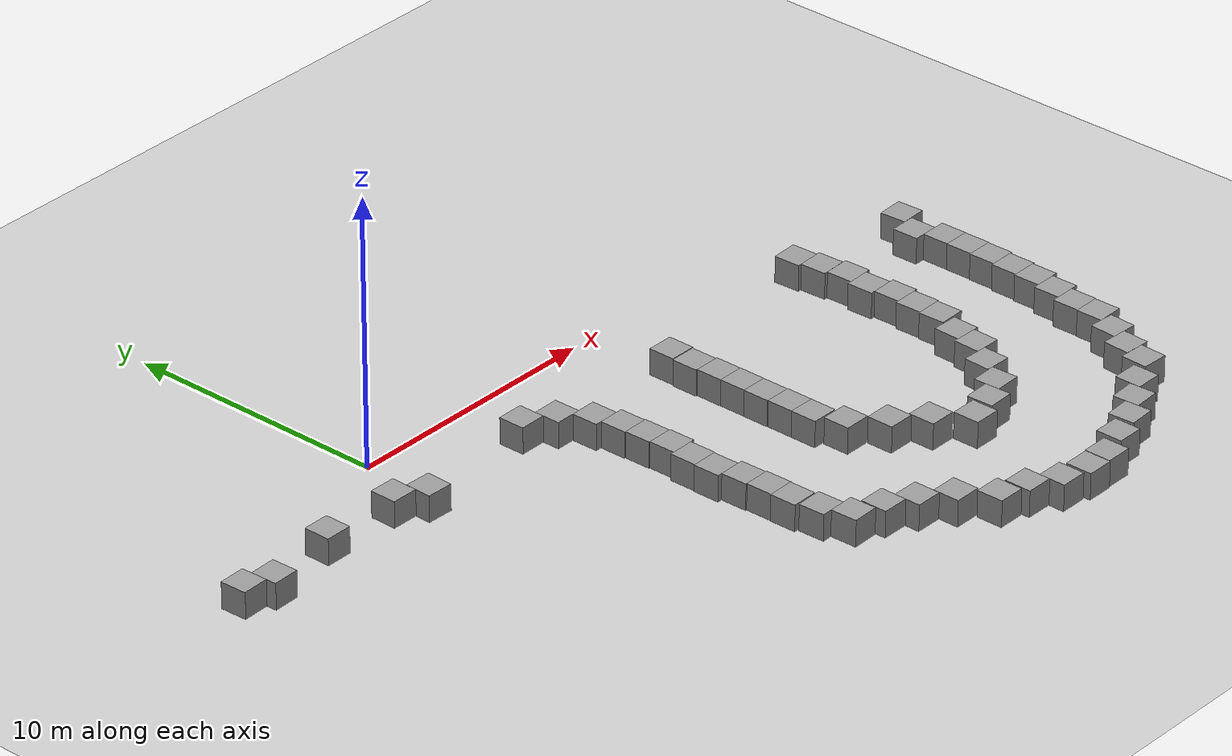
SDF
<sdf version="1.7">
 <world name="default">
  <model name="ground_plane">
   <static>1</static>
   <link name="link">
    <collision name="collision">
     <geometry><plane><normal>0 0 1</normal><size>100 100</size></plane></geometry>
     <surface>
      <contact><collide_bitmask>65535</collide_bitmask></contact>
      <friction><ode><mu>100</mu><mu2>50</mu2></ode></friction>
     </surface>
    </collision>
    <visual name="visual">
     <cast_shadows>0</cast_shadows>
     <geometry><plane><normal>0 0 1</normal><size>100 100</size></plane></geometry>
     <material>
      <script><uri>file://media/materials/scripts/gazebo.material</uri><name>Gazebo/Grey</name></script>
     </material>
    </visual>
   </link>
  </model>
  <model name="unit_box_5">
   <pose>-1.63227 -2.63168 0.499995 0 -1e-05 -0.008028</pose>
   <link name="link">
    <inertial>
     <mass>1</mass>
     <inertia>
      <ixx>0.166667</ixx>
      <ixy>0</ixy>
      <ixz>0</ixz>
      <iyy>0.166667</iyy>
      <iyz>0</iyz>
      <izz>0.166667</izz>
     </inertia>
    </inertial>
    <collision name="collision"><geometry><box><size>1 1 1</size></box></geometry></collision>
    <visual name="visual">
     <geometry><box><size>1 1 1</size></box></geometry>
     <material>
      <script><name>Gazebo/Grey</name><uri>file://media/materials/scripts/gazebo.material</uri></script>
     </material>
    </visual>
   </link>
  </model>
  <model name="unit_box_16">
   <pose>4.39824 -2.70245 0.499995 1e-05 0 0.00622</pose>
   <link name="link">
    <inertial>
     <mass>1</mass>
     <inertia>
      <ixx>0.166667</ixx>
      <ixy>0</ixy>
      <ixz>0</ixz>
      <iyy>0.166667</iyy>
      <iyz>0</iyz>
      <izz>0.166667</izz>
     </inertia>
    </inertial>
    <collision name="collision"><geometry><box><size>1 1 1</size></box></geometry></collision>
    <visual name="visual">
     <geometry><box><size>1 1 1</size></box></geometry>
     <material>
      <script><name>Gazebo/Grey</name><uri>file://media/materials/scripts/gazebo.material</uri></script>
     </material>
    </visual>
   </link>
  </model>
  <model name="unit_box_17">
   <pose>5.40236 -3.34784 0.499995 -0 1e-05 0.006361</pose>
   <link name="link">
    <inertial>
     <mass>1</mass>
     <inertia>
      <ixx>0.166667</ixx>
      <ixy>0</ixy>
      <ixz>0</ixz>
      <iyy>0.166667</iyy>
      <iyz>0</iyz>
      <izz>0.166667</izz>
     </inertia>
    </inertial>
    <collision name="collision"><geometry><box><size>1 1 1</size></box></geometry></collision>
    <visual name="visual">
     <geometry><box><size>1 1 1</size></box></geometry>
     <material>
      <script><name>Gazebo/Grey</name><uri>file://media/materials/scripts/gazebo.material</uri></script>
     </material>
    </visual>
   </link>
  </model>
  <model name="unit_box_18">
   <pose>6.11714 -4.34221 0.499995 0 -1e-05 0.011712</pose>
   <link name="link">
    <inertial>
     <mass>1</mass>
     <inertia>
      <ixx>0.166667</ixx>
      <ixy>0</ixy>
      <ixz>0</ixz>
      <iyy>0.166667</iyy>
      <iyz>0</iyz>
      <izz>0.166667</izz>
     </inertia>
    </inertial>
    <collision name="collision"><geometry><box><size>1 1 1</size></box></geometry></collision>
    <visual name="visual">
     <geometry><box><size>1 1 1</size></box></geometry>
     <material>
      <script><name>Gazebo/Grey</name><uri>file://media/materials/scripts/gazebo.material</uri></script>
     </material>
    </visual>
   </link>
  </model>
  <model name="unit_box_19">
   <pose>6.3639 -5.33969 0.499995 0 1e-05 0.011886</pose>
   <link name="link">
    <inertial>
     <mass>1</mass>
     <inertia>
      <ixx>0.166667</ixx>
      <ixy>0</ixy>
      <ixz>0</ixz>
      <iyy>0.166667</iyy>
      <iyz>0</iyz>
      <izz>0.166667</izz>
     </inertia>
    </inertial>
    <collision name="collision"><geometry><box><size>1 1 1</size></box></geometry></collision>
    <visual name="visual">
     <geometry><box><size>1 1 1</size></box></geometry>
     <material>
      <script><name>Gazebo/Grey</name><uri>file://media/materials/scripts/gazebo.material</uri></script>
     </material>
    </visual>
   </link>
  </model>
  <model name="unit_box_28">
   <pose>10.8726 -3.51527 0.499995 -1e-05 -0 -5e-06</pose>
   <link name="link">
    <inertial>
     <mass>1</mass>
     <inertia>
      <ixx>0.166667</ixx>
      <ixy>0</ixy>
      <ixz>0</ixz>
      <iyy>0.166667</iyy>
      <iyz>0</iyz>
      <izz>0.166667</izz>
     </inertia>
    </inertial>
    <collision name="collision"><geometry><box><size>1 1 1</size></box></geometry></collision>
    <visual name="visual">
     <geometry><box><size>1 1 1</size></box></geometry>
     <material>
      <script><name>Gazebo/Grey</name><uri>file://media/materials/scripts/gazebo.material</uri></script>
     </material>
    </visual>
   </link>
  </model>
  <model name="unit_box_29">
   <pose>10.8241 -4.54943 0.499995 -1e-05 -0 0.000273</pose>
   <link name="link">
    <inertial>
     <mass>1</mass>
     <inertia>
      <ixx>0.166667</ixx>
      <ixy>0</ixy>
      <ixz>0</ixz>
      <iyy>0.166667</iyy>
      <iyz>0</iyz>
      <izz>0.166667</izz>
     </inertia>
    </inertial>
    <collision name="collision"><geometry><box><size>1 1 1</size></box></geometry></collision>
    <visual name="visual">
     <geometry><box><size>1 1 1</size></box></geometry>
     <material>
      <script><name>Gazebo/Grey</name><uri>file://media/materials/scripts/gazebo.material</uri></script>
     </material>
    </visual>
   </link>
  </model>
  <model name="unit_box_30">
   <pose>10.8797 -5.54946 0.499995 -1e-05 0 0.00022</pose>
   <link name="link">
    <inertial>
     <mass>1</mass>
     <inertia>
      <ixx>0.166667</ixx>
      <ixy>0</ixy>
      <ixz>0</ixz>
      <iyy>0.166667</iyy>
      <iyz>0</iyz>
      <izz>0.166667</izz>
     </inertia>
    </inertial>
    <collision name="collision"><geometry><box><size>1 1 1</size></box></geometry></collision>
    <visual name="visual">
     <geometry><box><size>1 1 1</size></box></geometry>
     <material>
      <script><name>Gazebo/Grey</name><uri>file://media/materials/scripts/gazebo.material</uri></script>
     </material>
    </visual>
   </link>
  </model>
  <model name="unit_box_31">
   <pose>6.41406 -6.33969 0.499995 0 1e-05 0.012971</pose>
   <link name="link">
    <inertial>
     <mass>1</mass>
     <inertia>
      <ixx>0.166667</ixx>
      <ixy>0</ixy>
      <ixz>0</ixz>
      <iyy>0.166667</iyy>
      <iyz>0</iyz>
      <izz>0.166667</izz>
     </inertia>
    </inertial>
    <collision name="collision"><geometry><box><size>1 1 1</size></box></geometry></collision>
    <visual name="visual">
     <geometry><box><size>1 1 1</size></box></geometry>
     <material>
      <script><name>Gazebo/Grey</name><uri>file://media/materials/scripts/gazebo.material</uri></script>
     </material>
    </visual>
   </link>
  </model>
  <model name="unit_box_32">
   <pose>10.8891 -6.54951 0.499995 0 1e-05 0.00017</pose>
   <link name="link">
    <inertial>
     <mass>1</mass>
     <inertia>
      <ixx>0.166667</ixx>
      <ixy>0</ixy>
      <ixz>0</ixz>
      <iyy>0.166667</iyy>
      <iyz>0</iyz>
      <izz>0.166667</izz>
     </inertia>
    </inertial>
    <collision name="collision"><geometry><box><size>1 1 1</size></box></geometry></collision>
    <visual name="visual">
     <geometry><box><size>1 1 1</size></box></geometry>
     <material>
      <script><name>Gazebo/Grey</name><uri>file://media/materials/scripts/gazebo.material</uri></script>
     </material>
    </visual>
   </link>
  </model>
  <model name="unit_box_33">
   <pose>6.46012 -7.33918 0.5 0 -0 0.012974</pose>
   <link name="link">
    <inertial>
     <mass>1</mass>
     <inertia>
      <ixx>0.166667</ixx>
      <ixy>0</ixy>
      <ixz>0</ixz>
      <iyy>0.166667</iyy>
      <iyz>0</iyz>
      <izz>0.166667</izz>
     </inertia>
    </inertial>
    <collision name="collision"><geometry><box><size>1 1 1</size></box></geometry></collision>
    <visual name="visual">
     <geometry><box><size>1 1 1</size></box></geometry>
     <material>
      <script><name>Gazebo/Grey</name><uri>file://media/materials/scripts/gazebo.material</uri></script>
     </material>
    </visual>
   </link>
  </model>
  <model name="unit_box_32_clone">
   <pose>6.33219 -8.3411 0.5 0 -0 0.013303</pose>
   <link name="link">
    <inertial>
     <mass>1</mass>
     <inertia>
      <ixx>0.166667</ixx>
      <ixy>0</ixy>
      <ixz>0</ixz>
      <iyy>0.166667</iyy>
      <iyz>0</iyz>
      <izz>0.166667</izz>
     </inertia>
    </inertial>
    <collision name="collision"><geometry><box><size>1 1 1</size></box></geometry></collision>
    <visual name="visual">
     <geometry><box><size>1 1 1</size></box></geometry>
     <material>
      <script><name>Gazebo/Grey</name><uri>file://media/materials/scripts/gazebo.material</uri></script>
     </material>
    </visual>
   </link>
  </model>
  <model name="unit_box_32_clone_0">
   <pose>10.8828 -7.54992 0.499995 -1e-05 -0 -0.000395</pose>
   <link name="link">
    <inertial>
     <mass>1</mass>
     <inertia>
      <ixx>0.166667</ixx>
      <ixy>0</ixy>
      <ixz>0</ixz>
      <iyy>0.166667</iyy>
      <iyz>0</iyz>
      <izz>0.166667</izz>
     </inertia>
    </inertial>
    <collision name="collision"><geometry><box><size>1 1 1</size></box></geometry></collision>
    <visual name="visual">
     <geometry><box><size>1 1 1</size></box></geometry>
     <material>
      <script><name>Gazebo/Grey</name><uri>file://media/materials/scripts/gazebo.material</uri></script>
     </material>
    </visual>
   </link>
  </model>
  <model name="unit_box_32_clone_1">
   <pose>6.30855 -9.34159 0.499995 -0 -1e-05 0.013486</pose>
   <link name="link">
    <inertial>
     <mass>1</mass>
     <inertia>
      <ixx>0.166667</ixx>
      <ixy>0</ixy>
      <ixz>0</ixz>
      <iyy>0.166667</iyy>
      <iyz>0</iyz>
      <izz>0.166667</izz>
     </inertia>
    </inertial>
    <collision name="collision"><geometry><box><size>1 1 1</size></box></geometry></collision>
    <visual name="visual">
     <geometry><box><size>1 1 1</size></box></geometry>
     <material>
      <script><name>Gazebo/Grey</name><uri>file://media/materials/scripts/gazebo.material</uri></script>
     </material>
    </visual>
   </link>
  </model>
  <model name="unit_box_32_clone_2">
   <pose>6.49657 -10.3392 0.499995 -0 1e-05 0.013508</pose>
   <link name="link">
    <inertial>
     <mass>1</mass>
     <inertia>
      <ixx>0.166667</ixx>
      <ixy>0</ixy>
      <ixz>0</ixz>
      <iyy>0.166667</iyy>
      <iyz>0</iyz>
      <izz>0.166667</izz>
     </inertia>
    </inertial>
    <collision name="collision"><geometry><box><size>1 1 1</size></box></geometry></collision>
    <visual name="visual">
     <geometry><box><size>1 1 1</size></box></geometry>
     <material>
      <script><name>Gazebo/Grey</name><uri>file://media/materials/scripts/gazebo.material</uri></script>
     </material>
    </visual>
   </link>
  </model>
  <model name="unit_box_32_clone_3">
   <pose>10.8991 -8.55073 0.499995 0 -1e-05 -0.001861</pose>
   <link name="link">
    <inertial>
     <mass>1</mass>
     <inertia>
      <ixx>0.166667</ixx>
      <ixy>0</ixy>
      <ixz>0</ixz>
      <iyy>0.166667</iyy>
      <iyz>0</iyz>
      <izz>0.166667</izz>
     </inertia>
    </inertial>
    <collision name="collision"><geometry><box><size>1 1 1</size></box></geometry></collision>
    <visual name="visual">
     <geometry><box><size>1 1 1</size></box></geometry>
     <material>
      <script><name>Gazebo/Grey</name><uri>file://media/materials/scripts/gazebo.material</uri></script>
     </material>
    </visual>
   </link>
  </model>
  <model name="unit_box_32_clone_4">
   <pose>10.8972 -9.55127 0.499995 0 -1e-05 -0.002928</pose>
   <link name="link">
    <inertial>
     <mass>1</mass>
     <inertia>
      <ixx>0.166667</ixx>
      <ixy>0</ixy>
      <ixz>0</ixz>
      <iyy>0.166667</iyy>
      <iyz>0</iyz>
      <izz>0.166667</izz>
     </inertia>
    </inertial>
    <collision name="collision"><geometry><box><size>1 1 1</size></box></geometry></collision>
    <visual name="visual">
     <geometry><box><size>1 1 1</size></box></geometry>
     <material>
      <script><name>Gazebo/Grey</name><uri>file://media/materials/scripts/gazebo.material</uri></script>
     </material>
    </visual>
   </link>
  </model>
  <model name="unit_box_32_clone_5">
   <pose>6.55509 -11.3385 0.499995 0 1e-05 0.013501</pose>
   <link name="link">
    <inertial>
     <mass>1</mass>
     <inertia>
      <ixx>0.166667</ixx>
      <ixy>0</ixy>
      <ixz>0</ixz>
      <iyy>0.166667</iyy>
      <iyz>0</iyz>
      <izz>0.166667</izz>
     </inertia>
    </inertial>
    <collision name="collision"><geometry><box><size>1 1 1</size></box></geometry></collision>
    <visual name="visual">
     <geometry><box><size>1 1 1</size></box></geometry>
     <material>
      <script><name>Gazebo/Grey</name><uri>file://media/materials/scripts/gazebo.material</uri></script>
     </material>
    </visual>
   </link>
  </model>
  <model name="unit_box_32_clone_6">
   <pose>11.276 -10.6109 0.499995 0 1e-05 0.001319</pose>
   <link name="link">
    <inertial>
     <mass>1</mass>
     <inertia>
      <ixx>0.166667</ixx>
      <ixy>0</ixy>
      <ixz>0</ixz>
      <iyy>0.166667</iyy>
      <iyz>0</iyz>
      <izz>0.166667</izz>
     </inertia>
    </inertial>
    <collision name="collision"><geometry><box><size>1 1 1</size></box></geometry></collision>
    <visual name="visual">
     <geometry><box><size>1 1 1</size></box></geometry>
     <material>
      <script><name>Gazebo/Grey</name><uri>file://media/materials/scripts/gazebo.material</uri></script>
     </material>
    </visual>
   </link>
  </model>
  <model name="unit_box_32_clone_7">
   <pose>12.2553 -11.6331 0.499995 0 1e-05 0.001319</pose>
   <link name="link">
    <inertial>
     <mass>1</mass>
     <inertia>
      <ixx>0.166667</ixx>
      <ixy>0</ixy>
      <ixz>0</ixz>
      <iyy>0.166667</iyy>
      <iyz>0</iyz>
      <izz>0.166667</izz>
     </inertia>
    </inertial>
    <collision name="collision"><geometry><box><size>1 1 1</size></box></geometry></collision>
    <visual name="visual">
     <geometry><box><size>1 1 1</size></box></geometry>
     <material>
      <script><name>Gazebo/Grey</name><uri>file://media/materials/scripts/gazebo.material</uri></script>
     </material>
    </visual>
   </link>
  </model>
  <model name="unit_box_32_clone_8">
   <pose>13.2773 -12.5272 0.499995 0 1e-05 0.001319</pose>
   <link name="link">
    <inertial>
     <mass>1</mass>
     <inertia>
      <ixx>0.166667</ixx>
      <ixy>0</ixy>
      <ixz>0</ixz>
      <iyy>0.166667</iyy>
      <iyz>0</iyz>
      <izz>0.166667</izz>
     </inertia>
    </inertial>
    <collision name="collision"><geometry><box><size>1 1 1</size></box></geometry></collision>
    <visual name="visual">
     <geometry><box><size>1 1 1</size></box></geometry>
     <material>
      <script><name>Gazebo/Grey</name><uri>file://media/materials/scripts/gazebo.material</uri></script>
     </material>
    </visual>
   </link>
  </model>
  <model name="unit_box_32_clone_9">
   <pose>14.2987 -13.549 0.499995 0 1e-05 0.001319</pose>
   <link name="link">
    <inertial>
     <mass>1</mass>
     <inertia>
      <ixx>0.166667</ixx>
      <ixy>0</ixy>
      <ixz>0</ixz>
      <iyy>0.166667</iyy>
      <iyz>0</iyz>
      <izz>0.166667</izz>
     </inertia>
    </inertial>
    <collision name="collision"><geometry><box><size>1 1 1</size></box></geometry></collision>
    <visual name="visual">
     <geometry><box><size>1 1 1</size></box></geometry>
     <material>
      <script><name>Gazebo/Grey</name><uri>file://media/materials/scripts/gazebo.material</uri></script>
     </material>
    </visual>
   </link>
  </model>
  <model name="unit_box_32_clone_10">
   <pose>15.3803 -13.2281 0.499995 0 1e-05 0.040936</pose>
   <link name="link">
    <inertial>
     <mass>1</mass>
     <inertia>
      <ixx>0.166667</ixx>
      <ixy>0</ixy>
      <ixz>0</ixz>
      <iyy>0.166667</iyy>
      <iyz>0</iyz>
      <izz>0.166667</izz>
     </inertia>
    </inertial>
    <collision name="collision"><geometry><box><size>1 1 1</size></box></geometry></collision>
    <visual name="visual">
     <geometry><box><size>1 1 1</size></box></geometry>
     <material>
      <script><name>Gazebo/Grey</name><uri>file://media/materials/scripts/gazebo.material</uri></script>
     </material>
    </visual>
   </link>
  </model>
  <model name="unit_box_32_clone_11">
   <pose>16.3621 -12.7297 0.499995 0 1e-05 0.038196</pose>
   <link name="link">
    <inertial>
     <mass>1</mass>
     <inertia>
      <ixx>0.166667</ixx>
      <ixy>0</ixy>
      <ixz>0</ixz>
      <iyy>0.166667</iyy>
      <iyz>0</iyz>
      <izz>0.166667</izz>
     </inertia>
    </inertial>
    <collision name="collision"><geometry><box><size>1 1 1</size></box></geometry></collision>
    <visual name="visual">
     <geometry><box><size>1 1 1</size></box></geometry>
     <material>
      <script><name>Gazebo/Grey</name><uri>file://media/materials/scripts/gazebo.material</uri></script>
     </material>
    </visual>
   </link>
  </model>
  <model name="unit_box_32_clone_12">
   <pose>17.1342 -11.7208 0.5 0 0 -0.034855</pose>
   <link name="link">
    <inertial>
     <mass>1</mass>
     <inertia>
      <ixx>0.166667</ixx>
      <ixy>0</ixy>
      <ixz>0</ixz>
      <iyy>0.166667</iyy>
      <iyz>0</iyz>
      <izz>0.166667</izz>
     </inertia>
    </inertial>
    <collision name="collision"><geometry><box><size>1 1 1</size></box></geometry></collision>
    <visual name="visual">
     <geometry><box><size>1 1 1</size></box></geometry>
     <material>
      <script><name>Gazebo/Grey</name><uri>file://media/materials/scripts/gazebo.material</uri></script>
     </material>
    </visual>
   </link>
  </model>
  <model name="unit_box_32_clone_13">
   <pose>17.8095 -10.7409 0.499995 0 1e-05 -0.029256</pose>
   <link name="link">
    <inertial>
     <mass>1</mass>
     <inertia>
      <ixx>0.166667</ixx>
      <ixy>0</ixy>
      <ixz>0</ixz>
      <iyy>0.166667</iyy>
      <iyz>0</iyz>
      <izz>0.166667</izz>
     </inertia>
    </inertial>
    <collision name="collision"><geometry><box><size>1 1 1</size></box></geometry></collision>
    <visual name="visual">
     <geometry><box><size>1 1 1</size></box></geometry>
     <material>
      <script><name>Gazebo/Grey</name><uri>file://media/materials/scripts/gazebo.material</uri></script>
     </material>
    </visual>
   </link>
  </model>
  <model name="unit_box_32_clone_14">
   <pose>18.0046 -9.74616 0.499995 0 1e-05 -0.029233</pose>
   <link name="link">
    <inertial>
     <mass>1</mass>
     <inertia>
      <ixx>0.166667</ixx>
      <ixy>0</ixy>
      <ixz>0</ixz>
      <iyy>0.166667</iyy>
      <iyz>0</iyz>
      <izz>0.166667</izz>
     </inertia>
    </inertial>
    <collision name="collision"><geometry><box><size>1 1 1</size></box></geometry></collision>
    <visual name="visual">
     <geometry><box><size>1 1 1</size></box></geometry>
     <material>
      <script><name>Gazebo/Grey</name><uri>file://media/materials/scripts/gazebo.material</uri></script>
     </material>
    </visual>
   </link>
  </model>
  <model name="unit_box_32_clone_15">
   <pose>18.4737 -8.69085 0.499997 0 7e-06 0.02412</pose>
   <link name="link">
    <inertial>
     <mass>1</mass>
     <inertia>
      <ixx>0.166667</ixx>
      <ixy>0</ixy>
      <ixz>0</ixz>
      <iyy>0.166667</iyy>
      <iyz>0</iyz>
      <izz>0.166667</izz>
     </inertia>
    </inertial>
    <collision name="collision"><geometry><box><size>1 1 1</size></box></geometry></collision>
    <visual name="visual">
     <geometry><box><size>1 1 1</size></box></geometry>
     <material>
      <script><name>Gazebo/Grey</name><uri>file://media/materials/scripts/gazebo.material</uri></script>
     </material>
    </visual>
   </link>
  </model>
  <model name="unit_box_32_clone_16">
   <pose>18.5017 -7.68971 0.5 0 -0 0.024464</pose>
   <link name="link">
    <inertial>
     <mass>1</mass>
     <inertia>
      <ixx>0.166667</ixx>
      <ixy>0</ixy>
      <ixz>0</ixz>
      <iyy>0.166667</iyy>
      <iyz>0</iyz>
      <izz>0.166667</izz>
     </inertia>
    </inertial>
    <collision name="collision"><geometry><box><size>1 1 1</size></box></geometry></collision>
    <visual name="visual">
     <geometry><box><size>1 1 1</size></box></geometry>
     <material>
      <script><name>Gazebo/Grey</name><uri>file://media/materials/scripts/gazebo.material</uri></script>
     </material>
    </visual>
   </link>
  </model>
  <model name="unit_box_32_clone_17">
   <pose>18.5886 -6.68716 0.499995 0 -1e-05 0.024709</pose>
   <link name="link">
    <inertial>
     <mass>1</mass>
     <inertia>
      <ixx>0.166667</ixx>
      <ixy>0</ixy>
      <ixz>0</ixz>
      <iyy>0.166667</iyy>
      <iyz>0</iyz>
      <izz>0.166667</izz>
     </inertia>
    </inertial>
    <collision name="collision"><geometry><box><size>1 1 1</size></box></geometry></collision>
    <visual name="visual">
     <geometry><box><size>1 1 1</size></box></geometry>
     <material>
      <script><name>Gazebo/Grey</name><uri>file://media/materials/scripts/gazebo.material</uri></script>
     </material>
    </visual>
   </link>
  </model>
  <model name="unit_box_32_clone_18">
   <pose>18.4091 -5.69053 0.499995 0 -1e-05 0.026914</pose>
   <link name="link">
    <inertial>
     <mass>1</mass>
     <inertia>
      <ixx>0.166667</ixx>
      <ixy>0</ixy>
      <ixz>0</ixz>
      <iyy>0.166667</iyy>
      <iyz>0</iyz>
      <izz>0.166667</izz>
     </inertia>
    </inertial>
    <collision name="collision"><geometry><box><size>1 1 1</size></box></geometry></collision>
    <visual name="visual">
     <geometry><box><size>1 1 1</size></box></geometry>
     <material>
      <script><name>Gazebo/Grey</name><uri>file://media/materials/scripts/gazebo.material</uri></script>
     </material>
    </visual>
   </link>
  </model>
  <model name="unit_box_32_clone_19">
   <pose>18.5444 -4.6862 0.499995 -0 1e-05 0.027553</pose>
   <link name="link">
    <inertial>
     <mass>1</mass>
     <inertia>
      <ixx>0.166667</ixx>
      <ixy>0</ixy>
      <ixz>0</ixz>
      <iyy>0.166667</iyy>
      <iyz>0</iyz>
      <izz>0.166667</izz>
     </inertia>
    </inertial>
    <collision name="collision"><geometry><box><size>1 1 1</size></box></geometry></collision>
    <visual name="visual">
     <geometry><box><size>1 1 1</size></box></geometry>
     <material>
      <script><name>Gazebo/Grey</name><uri>file://media/materials/scripts/gazebo.material</uri></script>
     </material>
    </visual>
   </link>
  </model>
  <model name="unit_box_32_clone_20">
   <pose>18.3756 -3.68446 0.499995 -0 -1e-05 0.044092</pose>
   <link name="link">
    <inertial>
     <mass>1</mass>
     <inertia>
      <ixx>0.166667</ixx>
      <ixy>0</ixy>
      <ixz>0</ixz>
      <iyy>0.166667</iyy>
      <iyz>0</iyz>
      <izz>0.166667</izz>
     </inertia>
    </inertial>
    <collision name="collision"><geometry><box><size>1 1 1</size></box></geometry></collision>
    <visual name="visual">
     <geometry><box><size>1 1 1</size></box></geometry>
     <material>
      <script><name>Gazebo/Grey</name><uri>file://media/materials/scripts/gazebo.material</uri></script>
     </material>
    </visual>
   </link>
  </model>
  <model name="unit_box_32_clone_21">
   <pose>18.2038 -2.69101 0.499995 0 -1e-05 0.044246</pose>
   <link name="link">
    <inertial>
     <mass>1</mass>
     <inertia>
      <ixx>0.166667</ixx>
      <ixy>0</ixy>
      <ixz>0</ixz>
      <iyy>0.166667</iyy>
      <iyz>0</iyz>
      <izz>0.166667</izz>
     </inertia>
    </inertial>
    <collision name="collision"><geometry><box><size>1 1 1</size></box></geometry></collision>
    <visual name="visual">
     <geometry><box><size>1 1 1</size></box></geometry>
     <material>
      <script><name>Gazebo/Grey</name><uri>file://media/materials/scripts/gazebo.material</uri></script>
     </material>
    </visual>
   </link>
  </model>
  <model name="unit_box_32_clone_34">
   <pose>6.54786 -12.3387 0.499995 1e-05 -0 0.013521</pose>
   <link name="link">
    <inertial>
     <mass>1</mass>
     <inertia>
      <ixx>0.166667</ixx>
      <ixy>0</ixy>
      <ixz>0</ixz>
      <iyy>0.166667</iyy>
      <iyz>0</iyz>
      <izz>0.166667</izz>
     </inertia>
    </inertial>
    <collision name="collision"><geometry><box><size>1 1 1</size></box></geometry></collision>
    <visual name="visual">
     <geometry><box><size>1 1 1</size></box></geometry>
     <material>
      <script><name>Gazebo/Grey</name><uri>file://media/materials/scripts/gazebo.material</uri></script>
     </material>
    </visual>
   </link>
  </model>
  <model name="unit_box_32_clone_35">
   <pose>6.70579 -13.3841 0.5 0 -0 0.026314</pose>
   <link name="link">
    <inertial>
     <mass>1</mass>
     <inertia>
      <ixx>0.166667</ixx>
      <ixy>0</ixy>
      <ixz>0</ixz>
      <iyy>0.166667</iyy>
      <iyz>0</iyz>
      <izz>0.166667</izz>
     </inertia>
    </inertial>
    <collision name="collision"><geometry><box><size>1 1 1</size></box></geometry></collision>
    <visual name="visual">
     <geometry><box><size>1 1 1</size></box></geometry>
     <material>
      <script><name>Gazebo/Grey</name><uri>file://media/materials/scripts/gazebo.material</uri></script>
     </material>
    </visual>
   </link>
  </model>
  <model name="unit_box_32_clone_36">
   <pose>7.11067 -14.374 0.499995 0 1e-05 0.026303</pose>
   <link name="link">
    <inertial>
     <mass>1</mass>
     <inertia>
      <ixx>0.166667</ixx>
      <ixy>0</ixy>
      <ixz>0</ixz>
      <iyy>0.166667</iyy>
      <iyz>0</iyz>
      <izz>0.166667</izz>
     </inertia>
    </inertial>
    <collision name="collision"><geometry><box><size>1 1 1</size></box></geometry></collision>
    <visual name="visual">
     <geometry><box><size>1 1 1</size></box></geometry>
     <material>
      <script><name>Gazebo/Grey</name><uri>file://media/materials/scripts/gazebo.material</uri></script>
     </material>
    </visual>
   </link>
  </model>
  <model name="unit_box_32_clone_37">
   <pose>8.15581 -14.7487 0.499995 -1e-05 -0 -0.004913</pose>
   <link name="link">
    <inertial>
     <mass>1</mass>
     <inertia>
      <ixx>0.166667</ixx>
      <ixy>0</ixy>
      <ixz>0</ixz>
      <iyy>0.166667</iyy>
      <iyz>0</iyz>
      <izz>0.166667</izz>
     </inertia>
    </inertial>
    <collision name="collision"><geometry><box><size>1 1 1</size></box></geometry></collision>
    <visual name="visual">
     <geometry><box><size>1 1 1</size></box></geometry>
     <material>
      <script><name>Gazebo/Grey</name><uri>file://media/materials/scripts/gazebo.material</uri></script>
     </material>
    </visual>
   </link>
  </model>
  <model name="unit_box_32_clone_38">
   <pose>9.15311 -15.3083 0.499995 0 -1e-05 -0.004922</pose>
   <link name="link">
    <inertial>
     <mass>1</mass>
     <inertia>
      <ixx>0.166667</ixx>
      <ixy>0</ixy>
      <ixz>0</ixz>
      <iyy>0.166667</iyy>
      <iyz>0</iyz>
      <izz>0.166667</izz>
     </inertia>
    </inertial>
    <collision name="collision"><geometry><box><size>1 1 1</size></box></geometry></collision>
    <visual name="visual">
     <geometry><box><size>1 1 1</size></box></geometry>
     <material>
      <script><name>Gazebo/Grey</name><uri>file://media/materials/scripts/gazebo.material</uri></script>
     </material>
    </visual>
   </link>
  </model>
  <model name="unit_box_32_clone_39">
   <pose>10.1652 -16.0712 0.499995 0 1e-05 0.001319</pose>
   <link name="link">
    <inertial>
     <mass>1</mass>
     <inertia>
      <ixx>0.166667</ixx>
      <ixy>0</ixy>
      <ixz>0</ixz>
      <iyy>0.166667</iyy>
      <iyz>0</iyz>
      <izz>0.166667</izz>
     </inertia>
    </inertial>
    <collision name="collision"><geometry><box><size>1 1 1</size></box></geometry></collision>
    <visual name="visual">
     <geometry><box><size>1 1 1</size></box></geometry>
     <material>
      <script><name>Gazebo/Grey</name><uri>file://media/materials/scripts/gazebo.material</uri></script>
     </material>
    </visual>
   </link>
  </model>
  <model name="unit_box_32_clone_40">
   <pose>11.0593 -17.1359 0.499995 0 1e-05 0.001319</pose>
   <link name="link">
    <inertial>
     <mass>1</mass>
     <inertia>
      <ixx>0.166667</ixx>
      <ixy>0</ixy>
      <ixz>0</ixz>
      <iyy>0.166667</iyy>
      <iyz>0</iyz>
      <izz>0.166667</izz>
     </inertia>
    </inertial>
    <collision name="collision"><geometry><box><size>1 1 1</size></box></geometry></collision>
    <visual name="visual">
     <geometry><box><size>1 1 1</size></box></geometry>
     <material>
      <script><name>Gazebo/Grey</name><uri>file://media/materials/scripts/gazebo.material</uri></script>
     </material>
    </visual>
   </link>
  </model>
  <model name="unit_box_32_clone_41">
   <pose>12.1154 -17.4308 0.499995 -0 1e-05 -0.005267</pose>
   <link name="link">
    <inertial>
     <mass>1</mass>
     <inertia>
      <ixx>0.166667</ixx>
      <ixy>0</ixy>
      <ixz>0</ixz>
      <iyy>0.166667</iyy>
      <iyz>0</iyz>
      <izz>0.166667</izz>
     </inertia>
    </inertial>
    <collision name="collision"><geometry><box><size>1 1 1</size></box></geometry></collision>
    <visual name="visual">
     <geometry><box><size>1 1 1</size></box></geometry>
     <material>
      <script><name>Gazebo/Grey</name><uri>file://media/materials/scripts/gazebo.material</uri></script>
     </material>
    </visual>
   </link>
  </model>
  <model name="unit_box_32_clone_42">
   <pose>13.1122 -18.0332 0.499995 0 1e-05 -0.005268</pose>
   <link name="link">
    <inertial>
     <mass>1</mass>
     <inertia>
      <ixx>0.166667</ixx>
      <ixy>0</ixy>
      <ixz>0</ixz>
      <iyy>0.166667</iyy>
      <iyz>0</iyz>
      <izz>0.166667</izz>
     </inertia>
    </inertial>
    <collision name="collision"><geometry><box><size>1 1 1</size></box></geometry></collision>
    <visual name="visual">
     <geometry><box><size>1 1 1</size></box></geometry>
     <material>
      <script><name>Gazebo/Grey</name><uri>file://media/materials/scripts/gazebo.material</uri></script>
     </material>
    </visual>
   </link>
  </model>
  <model name="unit_box_32_clone_43">
   <pose>14.2105 -18.2423 0.499995 0 1e-05 0.001319</pose>
   <link name="link">
    <inertial>
     <mass>1</mass>
     <inertia>
      <ixx>0.166667</ixx>
      <ixy>0</ixy>
      <ixz>0</ixz>
      <iyy>0.166667</iyy>
      <iyz>0</iyz>
      <izz>0.166667</izz>
     </inertia>
    </inertial>
    <collision name="collision"><geometry><box><size>1 1 1</size></box></geometry></collision>
    <visual name="visual">
     <geometry><box><size>1 1 1</size></box></geometry>
     <material>
      <script><name>Gazebo/Grey</name><uri>file://media/materials/scripts/gazebo.material</uri></script>
     </material>
    </visual>
   </link>
  </model>
  <model name="unit_box_32_clone_44">
   <pose>15.2317 -18.2004 0.499995 0 1e-05 0.001319</pose>
   <link name="link">
    <inertial>
     <mass>1</mass>
     <inertia>
      <ixx>0.166667</ixx>
      <ixy>0</ixy>
      <ixz>0</ixz>
      <iyy>0.166667</iyy>
      <iyz>0</iyz>
      <izz>0.166667</izz>
     </inertia>
    </inertial>
    <collision name="collision"><geometry><box><size>1 1 1</size></box></geometry></collision>
    <visual name="visual">
     <geometry><box><size>1 1 1</size></box></geometry>
     <material>
      <script><name>Gazebo/Grey</name><uri>file://media/materials/scripts/gazebo.material</uri></script>
     </material>
    </visual>
   </link>
  </model>
  <model name="unit_box_32_clone_45">
   <pose>16.4238 -17.732 0.499995 0 1e-05 0.001319</pose>
   <link name="link">
    <inertial>
     <mass>1</mass>
     <inertia>
      <ixx>0.166667</ixx>
      <ixy>0</ixy>
      <ixz>0</ixz>
      <iyy>0.166667</iyy>
      <iyz>0</iyz>
      <izz>0.166667</izz>
     </inertia>
    </inertial>
    <collision name="collision"><geometry><box><size>1 1 1</size></box></geometry></collision>
    <visual name="visual">
     <geometry><box><size>1 1 1</size></box></geometry>
     <material>
      <script><name>Gazebo/Grey</name><uri>file://media/materials/scripts/gazebo.material</uri></script>
     </material>
    </visual>
   </link>
  </model>
  <model name="unit_box_32_clone_46">
   <pose>17.5358 -17.3314 0.5 0 -0 0.062716</pose>
   <link name="link">
    <inertial>
     <mass>1</mass>
     <inertia>
      <ixx>0.166667</ixx>
      <ixy>0</ixy>
      <ixz>0</ixz>
      <iyy>0.166667</iyy>
      <iyz>0</iyz>
      <izz>0.166667</izz>
     </inertia>
    </inertial>
    <collision name="collision"><geometry><box><size>1 1 1</size></box></geometry></collision>
    <visual name="visual">
     <geometry><box><size>1 1 1</size></box></geometry>
     <material>
      <script><name>Gazebo/Grey</name><uri>file://media/materials/scripts/gazebo.material</uri></script>
     </material>
    </visual>
   </link>
  </model>
  <model name="unit_box_32_clone_47">
   <pose>18.5028 -16.7713 0.5 0 -0 0.06237</pose>
   <link name="link">
    <inertial>
     <mass>1</mass>
     <inertia>
      <ixx>0.166667</ixx>
      <ixy>0</ixy>
      <ixz>0</ixz>
      <iyy>0.166667</iyy>
      <iyz>0</iyz>
      <izz>0.166667</izz>
     </inertia>
    </inertial>
    <collision name="collision"><geometry><box><size>1 1 1</size></box></geometry></collision>
    <visual name="visual">
     <geometry><box><size>1 1 1</size></box></geometry>
     <material>
      <script><name>Gazebo/Grey</name><uri>file://media/materials/scripts/gazebo.material</uri></script>
     </material>
    </visual>
   </link>
  </model>
  <model name="unit_box_32_clone_48">
   <pose>19.4916 -16.1134 0.5 0 -0 0.004887</pose>
   <link name="link">
    <inertial>
     <mass>1</mass>
     <inertia>
      <ixx>0.166667</ixx>
      <ixy>0</ixy>
      <ixz>0</ixz>
      <iyy>0.166667</iyy>
      <iyz>0</iyz>
      <izz>0.166667</izz>
     </inertia>
    </inertial>
    <collision name="collision"><geometry><box><size>1 1 1</size></box></geometry></collision>
    <visual name="visual">
     <geometry><box><size>1 1 1</size></box></geometry>
     <material>
      <script><name>Gazebo/Grey</name><uri>file://media/materials/scripts/gazebo.material</uri></script>
     </material>
    </visual>
   </link>
  </model>
  <model name="unit_box_32_clone_49">
   <pose>20.6351 -15.4988 0.499995 -1e-05 -0 -0.037521</pose>
   <link name="link">
    <inertial>
     <mass>1</mass>
     <inertia>
      <ixx>0.166667</ixx>
      <ixy>0</ixy>
      <ixz>0</ixz>
      <iyy>0.166667</iyy>
      <iyz>0</iyz>
      <izz>0.166667</izz>
     </inertia>
    </inertial>
    <collision name="collision"><geometry><box><size>1 1 1</size></box></geometry></collision>
    <visual name="visual">
     <geometry><box><size>1 1 1</size></box></geometry>
     <material>
      <script><name>Gazebo/Grey</name><uri>file://media/materials/scripts/gazebo.material</uri></script>
     </material>
    </visual>
   </link>
  </model>
  <model name="unit_box_32_clone_50">
   <pose>20.9671 -14.5061 0.499995 0 -1e-05 -0.057915</pose>
   <link name="link">
    <inertial>
     <mass>1</mass>
     <inertia>
      <ixx>0.166667</ixx>
      <ixy>0</ixy>
      <ixz>0</ixz>
      <iyy>0.166667</iyy>
      <iyz>0</iyz>
      <izz>0.166667</izz>
     </inertia>
    </inertial>
    <collision name="collision"><geometry><box><size>1 1 1</size></box></geometry></collision>
    <visual name="visual">
     <geometry><box><size>1 1 1</size></box></geometry>
     <material>
      <script><name>Gazebo/Grey</name><uri>file://media/materials/scripts/gazebo.material</uri></script>
     </material>
    </visual>
   </link>
  </model>
  <model name="unit_box_32_clone_51">
   <pose>21.5138 -13.5361 0.499995 0 -1e-05 -0.057809</pose>
   <link name="link">
    <inertial>
     <mass>1</mass>
     <inertia>
      <ixx>0.166667</ixx>
      <ixy>0</ixy>
      <ixz>0</ixz>
      <iyy>0.166667</iyy>
      <iyz>0</iyz>
      <izz>0.166667</izz>
     </inertia>
    </inertial>
    <collision name="collision"><geometry><box><size>1 1 1</size></box></geometry></collision>
    <visual name="visual">
     <geometry><box><size>1 1 1</size></box></geometry>
     <material>
      <script><name>Gazebo/Grey</name><uri>file://media/materials/scripts/gazebo.material</uri></script>
     </material>
    </visual>
   </link>
  </model>
  <model name="unit_box_32_clone_52">
   <pose>22.0224 -12.5297 0.499995 -1e-05 -0 0.012869</pose>
   <link name="link">
    <inertial>
     <mass>1</mass>
     <inertia>
      <ixx>0.166667</ixx>
      <ixy>0</ixy>
      <ixz>0</ixz>
      <iyy>0.166667</iyy>
      <iyz>0</iyz>
      <izz>0.166667</izz>
     </inertia>
    </inertial>
    <collision name="collision"><geometry><box><size>1 1 1</size></box></geometry></collision>
    <visual name="visual">
     <geometry><box><size>1 1 1</size></box></geometry>
     <material>
      <script><name>Gazebo/Grey</name><uri>file://media/materials/scripts/gazebo.material</uri></script>
     </material>
    </visual>
   </link>
  </model>
  <model name="unit_box_32_clone_53">
   <pose>22.0383 -11.5293 0.499995 -1e-05 -0 0.012962</pose>
   <link name="link">
    <inertial>
     <mass>1</mass>
     <inertia>
      <ixx>0.166667</ixx>
      <ixy>0</ixy>
      <ixz>0</ixz>
      <iyy>0.166667</iyy>
      <iyz>0</iyz>
      <izz>0.166667</izz>
     </inertia>
    </inertial>
    <collision name="collision"><geometry><box><size>1 1 1</size></box></geometry></collision>
    <visual name="visual">
     <geometry><box><size>1 1 1</size></box></geometry>
     <material>
      <script><name>Gazebo/Grey</name><uri>file://media/materials/scripts/gazebo.material</uri></script>
     </material>
    </visual>
   </link>
  </model>
  <model name="unit_box_32_clone_54">
   <pose>22.2839 -10.5261 0.499995 1e-05 -0 0.012975</pose>
   <link name="link">
    <inertial>
     <mass>1</mass>
     <inertia>
      <ixx>0.166667</ixx>
      <ixy>0</ixy>
      <ixz>0</ixz>
      <iyy>0.166667</iyy>
      <iyz>0</iyz>
      <izz>0.166667</izz>
     </inertia>
    </inertial>
    <collision name="collision"><geometry><box><size>1 1 1</size></box></geometry></collision>
    <visual name="visual">
     <geometry><box><size>1 1 1</size></box></geometry>
     <material>
      <script><name>Gazebo/Grey</name><uri>file://media/materials/scripts/gazebo.material</uri></script>
     </material>
    </visual>
   </link>
  </model>
  <model name="unit_box_32_clone_55">
   <pose>22.4808 -9.52325 0.499995 -1e-05 -0 0.013333</pose>
   <link name="link">
    <inertial>
     <mass>1</mass>
     <inertia>
      <ixx>0.166667</ixx>
      <ixy>0</ixy>
      <ixz>0</ixz>
      <iyy>0.166667</iyy>
      <iyz>0</iyz>
      <izz>0.166667</izz>
     </inertia>
    </inertial>
    <collision name="collision"><geometry><box><size>1 1 1</size></box></geometry></collision>
    <visual name="visual">
     <geometry><box><size>1 1 1</size></box></geometry>
     <material>
      <script><name>Gazebo/Grey</name><uri>file://media/materials/scripts/gazebo.material</uri></script>
     </material>
    </visual>
   </link>
  </model>
  <model name="unit_box_32_clone_56">
   <pose>22.5303 -8.5225 0.499995 -1e-05 -0 0.013334</pose>
   <link name="link">
    <inertial>
     <mass>1</mass>
     <inertia>
      <ixx>0.166667</ixx>
      <ixy>0</ixy>
      <ixz>0</ixz>
      <iyy>0.166667</iyy>
      <iyz>0</iyz>
      <izz>0.166667</izz>
     </inertia>
    </inertial>
    <collision name="collision"><geometry><box><size>1 1 1</size></box></geometry></collision>
    <visual name="visual">
     <geometry><box><size>1 1 1</size></box></geometry>
     <material>
      <script><name>Gazebo/Grey</name><uri>file://media/materials/scripts/gazebo.material</uri></script>
     </material>
    </visual>
   </link>
  </model>
  <model name="unit_box_32_clone_57">
   <pose>22.5993 -7.52148 0.5 0 -0 0.013357</pose>
   <link name="link">
    <inertial>
     <mass>1</mass>
     <inertia>
      <ixx>0.166667</ixx>
      <ixy>0</ixy>
      <ixz>0</ixz>
      <iyy>0.166667</iyy>
      <iyz>0</iyz>
      <izz>0.166667</izz>
     </inertia>
    </inertial>
    <collision name="collision"><geometry><box><size>1 1 1</size></box></geometry></collision>
    <visual name="visual">
     <geometry><box><size>1 1 1</size></box></geometry>
     <material>
      <script><name>Gazebo/Grey</name><uri>file://media/materials/scripts/gazebo.material</uri></script>
     </material>
    </visual>
   </link>
  </model>
  <model name="unit_box_32_clone_58">
   <pose>22.6161 -6.52115 0.499995 -1e-05 -0 0.013358</pose>
   <link name="link">
    <inertial>
     <mass>1</mass>
     <inertia>
      <ixx>0.166667</ixx>
      <ixy>0</ixy>
      <ixz>0</ixz>
      <iyy>0.166667</iyy>
      <iyz>0</iyz>
      <izz>0.166667</izz>
     </inertia>
    </inertial>
    <collision name="collision"><geometry><box><size>1 1 1</size></box></geometry></collision>
    <visual name="visual">
     <geometry><box><size>1 1 1</size></box></geometry>
     <material>
      <script><name>Gazebo/Grey</name><uri>file://media/materials/scripts/gazebo.material</uri></script>
     </material>
    </visual>
   </link>
  </model>
  <model name="unit_box_32_clone_59">
   <pose>22.6118 -5.52111 0.499995 -1e-05 0 0.013361</pose>
   <link name="link">
    <inertial>
     <mass>1</mass>
     <inertia>
      <ixx>0.166667</ixx>
      <ixy>0</ixy>
      <ixz>0</ixz>
      <iyy>0.166667</iyy>
      <iyz>0</iyz>
      <izz>0.166667</izz>
     </inertia>
    </inertial>
    <collision name="collision"><geometry><box><size>1 1 1</size></box></geometry></collision>
    <visual name="visual">
     <geometry><box><size>1 1 1</size></box></geometry>
     <material>
      <script><name>Gazebo/Grey</name><uri>file://media/materials/scripts/gazebo.material</uri></script>
     </material>
    </visual>
   </link>
  </model>
  <model name="unit_box_32_clone_60">
   <pose>22.2105 -4.52637 0.5 0 -0 0.013347</pose>
   <link name="link">
    <inertial>
     <mass>1</mass>
     <inertia>
      <ixx>0.166667</ixx>
      <ixy>0</ixy>
      <ixz>0</ixz>
      <iyy>0.166667</iyy>
      <iyz>0</iyz>
      <izz>0.166667</izz>
     </inertia>
    </inertial>
    <collision name="collision"><geometry><box><size>1 1 1</size></box></geometry></collision>
    <visual name="visual">
     <geometry><box><size>1 1 1</size></box></geometry>
     <material>
      <script><name>Gazebo/Grey</name><uri>file://media/materials/scripts/gazebo.material</uri></script>
     </material>
    </visual>
   </link>
  </model>
  <model name="unit_box_32_clone_61">
   <pose>22.8017 -3.49867 0.5 0 -0 0.053621</pose>
   <link name="link">
    <inertial>
     <mass>1</mass>
     <inertia>
      <ixx>0.166667</ixx>
      <ixy>0</ixy>
      <ixz>0</ixz>
      <iyy>0.166667</iyy>
      <iyz>0</iyz>
      <izz>0.166667</izz>
     </inertia>
    </inertial>
    <collision name="collision"><geometry><box><size>1 1 1</size></box></geometry></collision>
    <visual name="visual">
     <geometry><box><size>1 1 1</size></box></geometry>
     <material>
      <script><name>Gazebo/Grey</name><uri>file://media/materials/scripts/gazebo.material</uri></script>
     </material>
    </visual>
   </link>
  </model>
  <model name="unit_box_32_clone_33_clone_clone_20_clone_38">
   <pose>-8.64211 -2.7303 0.499995 1e-05 -0 0.032552</pose>
   <link name="link">
    <inertial>
     <mass>1</mass>
     <inertia>
      <ixx>0.166667</ixx>
      <ixy>0</ixy>
      <ixz>0</ixz>
      <iyy>0.166667</iyy>
      <iyz>0</iyz>
      <izz>0.166667</izz>
     </inertia>
    </inertial>
    <collision name="collision"><geometry><box><size>1 1 1</size></box></geometry></collision>
    <visual name="visual">
     <geometry><box><size>1 1 1</size></box></geometry>
     <material>
      <script><name>Gazebo/Grey</name><uri>file://media/materials/scripts/gazebo.material</uri></script>
     </material>
    </visual>
   </link>
  </model>
  <model name="unit_box_32_clone_33_clone_clone_20_clone_39">
   <pose>-7.63 -3.08538 0.499995 -1e-05 -0 0.032568</pose>
   <link name="link">
    <inertial>
     <mass>1</mass>
     <inertia>
      <ixx>0.166667</ixx>
      <ixy>0</ixy>
      <ixz>0</ixz>
      <iyy>0.166667</iyy>
      <iyz>0</iyz>
      <izz>0.166667</izz>
     </inertia>
    </inertial>
    <collision name="collision"><geometry><box><size>1 1 1</size></box></geometry></collision>
    <visual name="visual">
     <geometry><box><size>1 1 1</size></box></geometry>
     <material>
      <script><name>Gazebo/Grey</name><uri>file://media/materials/scripts/gazebo.material</uri></script>
     </material>
    </visual>
   </link>
  </model>
  <model name="unit_box_32_clone_33_clone_clone_20_clone_42">
   <pose>-4.63755 -2.56023 0.499995 0 1e-05 0.003294</pose>
   <link name="link">
    <inertial>
     <mass>1</mass>
     <inertia>
      <ixx>0.166667</ixx>
      <ixy>0</ixy>
      <ixz>0</ixz>
      <iyy>0.166667</iyy>
      <iyz>0</iyz>
      <izz>0.166667</izz>
     </inertia>
    </inertial>
    <collision name="collision"><geometry><box><size>1 1 1</size></box></geometry></collision>
    <visual name="visual">
     <geometry><box><size>1 1 1</size></box></geometry>
     <material>
      <script><name>Gazebo/Grey</name><uri>file://media/materials/scripts/gazebo.material</uri></script>
     </material>
    </visual>
   </link>
  </model>
  <model name="unit_box_32_clone_33_clone_clone_20_clone_43">
   <pose>-0.639513 -3.24511 0.499995 -0 -1e-05 -0.033439</pose>
   <link name="link">
    <inertial>
     <mass>1</mass>
     <inertia>
      <ixx>0.166667</ixx>
      <ixy>0</ixy>
      <ixz>0</ixz>
      <iyy>0.166667</iyy>
      <iyz>0</iyz>
      <izz>0.166667</izz>
     </inertia>
    </inertial>
    <collision name="collision"><geometry><box><size>1 1 1</size></box></geometry></collision>
    <visual name="visual">
     <geometry><box><size>1 1 1</size></box></geometry>
     <material>
      <script><name>Gazebo/Grey</name><uri>file://media/materials/scripts/gazebo.material</uri></script>
     </material>
    </visual>
   </link>
  </model>
 </world>
</sdf>
